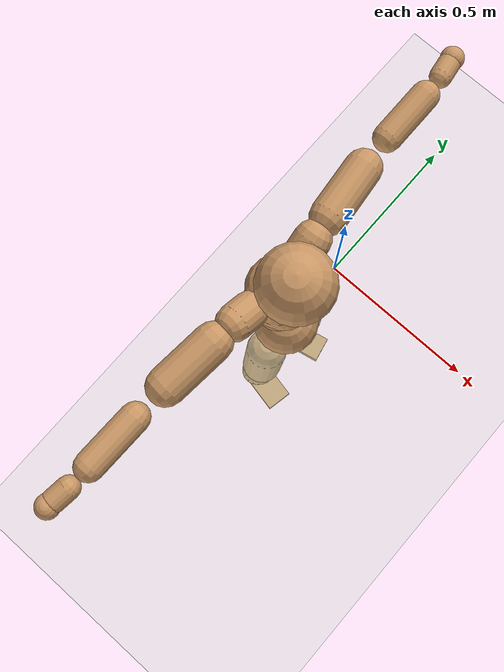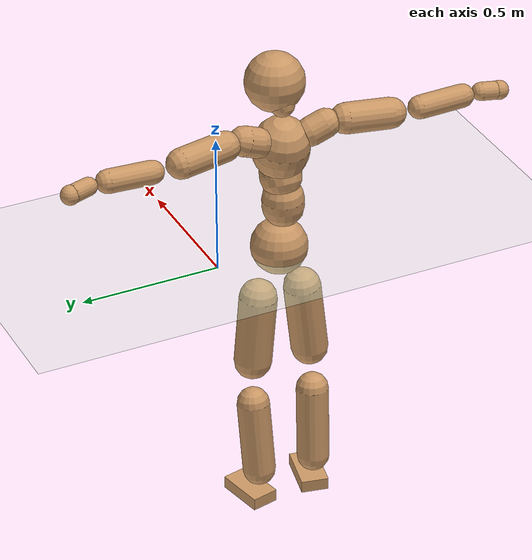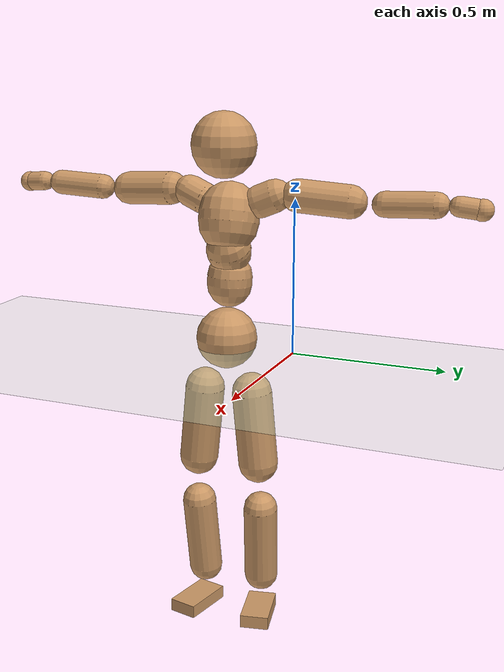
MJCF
<mujoco model="humanoid">
  <compiler coordinate="local" angle="radian"/>
  <default>
    <joint damping="0.0" armature="0.01" stiffness="0.0" limited="true"/>
    <geom conaffinity="1" condim="3" contype="7" margin="0.001" rgba="0.8 0.6 .4 1"/>
  </default>
  <asset>
    <texture type="skybox" builtin="gradient" rgb1=".4 .5 .6" rgb2="0 0 0" width="100" height="100"/>
    <texture builtin="flat" height="1278" mark="cross" markrgb="1 1 1" name="texgeom" random="0.01" rgb1="0.8 0.6 0.4" rgb2="0.8 0.6 0.4" type="cube" width="127"/>
    <texture builtin="checker" height="100" name="texplane" rgb1="0 0 0" rgb2="0.8 0.8 0.8" type="2d" width="100"/>
    <material name="MatPlane" reflectance="0.5" shininess="1" specular="1" texrepeat="60 60" texture="texplane"/>
    <material name="geom" texture="texgeom" texuniform="true"/>
  </asset>
  <worldbody>
    <light cutoff="100" diffuse="1 1 1" dir="-0 0 -1.3" directional="true" exponent="1" pos="0 0 1.3" specular=".1 .1 .1"/>
    <geom conaffinity="1" condim="3" name="floor" pos="0 0 0" rgba="0.8 0.9 0.8 1" size="100 100 .2" type="plane" material="MatPlane"/>
    <body name="Pelvis" pos="-0.0005 -0.2331 0.0277">
      <freejoint name="Pelvis"/>
      <geom type="sphere" contype="1" conaffinity="1" density="500" size="0.1013" pos="0.0000 0.0000 0.0000" name="Pelvis"/>
      <body name="L_Hip" pos="-0.0102 0.0785 -0.0993">
        <joint name="L_Hip_x" type="hinge" pos="0 0 0" axis="1 0 0" stiffness="800" damping="80" armature="0.02" range="-180.0000 180.0000"/>
        <joint name="L_Hip_y" type="hinge" pos="0 0 0" axis="0 1 0" stiffness="800" damping="80" armature="0.02" range="-180.0000 180.0000"/>
        <joint name="L_Hip_z" type="hinge" pos="0 0 0" axis="0 0 1" stiffness="800" damping="80" armature="0.02" range="-180.0000 180.0000"/>
        <geom type="capsule" contype="1" conaffinity="1" density="500" fromto="-0.0008 0.0078 -0.0844 -0.0034 0.0311 -0.3375" size="0.0674" name="L_Hip"/>
        <body name="L_Knee" pos="-0.0042 0.0389 -0.4219">
          <joint name="L_Knee_x" type="hinge" pos="0 0 0" axis="1 0 0" stiffness="800" damping="80" armature="0.02" range="-180.0000 180.0000"/>
          <joint name="L_Knee_y" type="hinge" pos="0 0 0" axis="0 1 0" stiffness="800" damping="80" armature="0.02" range="-180.0000 180.0000"/>
          <joint name="L_Knee_z" type="hinge" pos="0 0 0" axis="0 0 1" stiffness="800" damping="80" armature="0.02" range="-180.0000 180.0000"/>
          <geom type="capsule" contype="1" conaffinity="1" density="500" fromto="-0.0102 -0.0025 -0.0894 -0.0406 -0.0102 -0.3575" size="0.0586" name="L_Knee"/>
          <body name="L_Ankle" pos="-0.0508 -0.0127 -0.4469">
            <joint name="L_Ankle_x" type="hinge" pos="0 0 0" axis="1 0 0" stiffness="800" damping="80" armature="0.02" range="-180.0000 180.0000"/>
            <joint name="L_Ankle_y" type="hinge" pos="0 0 0" axis="0 1 0" stiffness="800" damping="80" armature="0.02" range="-180.0000 180.0000"/>
            <joint name="L_Ankle_z" type="hinge" pos="0 0 0" axis="0 0 1" stiffness="800" damping="80" armature="0.02" range="-180.0000 180.0000"/>
            <geom type="box" contype="1" conaffinity="1" density="500" pos="0.0632 0.0135 -0.0315" size="0.0889 0.0492 0.0227" quat="0.9945 0.0000 0.0000 0.1047" name="L_Ankle"/>
            <body name="L_Toe" pos="0.1265 0.0269 -0.063">
              <joint name="L_Toe_x" type="hinge" pos="0 0 0" axis="1 0 0" stiffness="500" damping="50" armature="0.02" range="-180.0000 180.0000"/>
              <joint name="L_Toe_y" type="hinge" pos="0 0 0" axis="0 1 0" stiffness="500" damping="50" armature="0.02" range="-180.0000 180.0000"/>
              <joint name="L_Toe_z" type="hinge" pos="0 0 0" axis="0 0 1" stiffness="500" damping="50" armature="0.02" range="-180.0000 180.0000"/>
              <geom type="box" contype="1" conaffinity="1" density="500" pos="0.0000 0.0000 0.0320" size="0.001 0.0025 0.0012" quat="0.9939 0.0000 0.0000 0.1105" name="L_Toe"/>
            </body>
          </body>
        </body>
      </body>
      <body name="R_Hip" pos="-0.0061 -0.075 -0.0981">
        <joint name="R_Hip_x" type="hinge" pos="0 0 0" axis="1 0 0" stiffness="800" damping="80" armature="0.02" range="-180.0000 180.0000"/>
        <joint name="R_Hip_y" type="hinge" pos="0 0 0" axis="0 1 0" stiffness="800" damping="80" armature="0.02" range="-180.0000 180.0000"/>
        <joint name="R_Hip_z" type="hinge" pos="0 0 0" axis="0 0 1" stiffness="800" damping="80" armature="0.02" range="-180.0000 180.0000"/>
        <geom type="capsule" contype="1" conaffinity="1" density="500" fromto="-0.0015 -0.0093 -0.0860 -0.0062 -0.0371 -0.3442" size="0.0664" name="R_Hip"/>
        <body name="R_Knee" pos="-0.0077 -0.0464 -0.4302">
          <joint name="R_Knee_x" type="hinge" pos="0 0 0" axis="1 0 0" stiffness="800" damping="80" armature="0.02" range="-180.0000 180.0000"/>
          <joint name="R_Knee_y" type="hinge" pos="0 0 0" axis="0 1 0" stiffness="800" damping="80" armature="0.02" range="-180.0000 180.0000"/>
          <joint name="R_Knee_z" type="hinge" pos="0 0 0" axis="0 0 1" stiffness="800" damping="80" armature="0.02" range="-180.0000 180.0000"/>
          <geom type="capsule" contype="1" conaffinity="1" density="500" fromto="-0.0097 0.0032 -0.0894 -0.0389 0.0128 -0.3576" size="0.0588" name="R_Knee"/>
          <body name="R_Ankle" pos="-0.0486 0.016 -0.4469">
            <joint name="R_Ankle_x" type="hinge" pos="0 0 0" axis="1 0 0" stiffness="800" damping="80" armature="0.02" range="-180.0000 180.0000"/>
            <joint name="R_Ankle_y" type="hinge" pos="0 0 0" axis="0 1 0" stiffness="800" damping="80" armature="0.02" range="-180.0000 180.0000"/>
            <joint name="R_Ankle_z" type="hinge" pos="0 0 0" axis="0 0 1" stiffness="800" damping="80" armature="0.02" range="-180.0000 180.0000"/>
            <geom type="box" contype="1" conaffinity="1" density="500" pos="0.0653 -0.0135 -0.0269" size="0.0906 0.0495 0.0224" quat="0.9948 0.0000 0.0000 -0.1017" name="R_Ankle"/>
            <body name="R_Toe" pos="0.1305 -0.027 -0.0538">
              <joint name="R_Toe_x" type="hinge" pos="0 0 0" axis="1 0 0" stiffness="500" damping="50" armature="0.02" range="-180.0000 180.0000"/>
              <joint name="R_Toe_y" type="hinge" pos="0 0 0" axis="0 1 0" stiffness="500" damping="50" armature="0.02" range="-180.0000 180.0000"/>
              <joint name="R_Toe_z" type="hinge" pos="0 0 0" axis="0 0 1" stiffness="500" damping="50" armature="0.02" range="-180.0000 180.0000"/>
              <geom type="box" contype="1" conaffinity="1" density="500" pos="0.0000 0.0000 0.0302" size="0.0009 0.0024 0.0013" quat="0.9957 0.0000 0.0000 -0.0929" name="R_Toe"/>
            </body>
          </body>
        </body>
      </body>
      <body name="Torso" pos="-0.0256 -0.0038 0.1152">
        <joint name="Torso_x" type="hinge" pos="0 0 0" axis="1 0 0" stiffness="1000" damping="100" armature="0.02" range="-180.0000 180.0000"/>
        <joint name="Torso_y" type="hinge" pos="0 0 0" axis="0 1 0" stiffness="1000" damping="100" armature="0.02" range="-180.0000 180.0000"/>
        <joint name="Torso_z" type="hinge" pos="0 0 0" axis="0 0 1" stiffness="1000" damping="100" armature="0.02" range="-180.0000 180.0000"/>
        <geom type="capsule" contype="1" conaffinity="1" density="500" fromto="-0.0030 0.0031 0.0887 -0.0020 0.0021 0.0591" size="0.0742" name="Torso"/>
        <body name="Spine" pos="-0.005 0.0052 0.1478">
          <joint name="Spine_x" type="hinge" pos="0 0 0" axis="1 0 0" stiffness="1000" damping="100" armature="0.02" range="-180.0000 180.0000"/>
          <joint name="Spine_y" type="hinge" pos="0 0 0" axis="0 1 0" stiffness="1000" damping="100" armature="0.02" range="-180.0000 180.0000"/>
          <joint name="Spine_z" type="hinge" pos="0 0 0" axis="0 0 1" stiffness="1000" damping="100" armature="0.02" range="-180.0000 180.0000"/>
          <geom type="capsule" contype="1" conaffinity="1" density="500" fromto="0.0188 0.0005 0.0334 0.0126 0.0003 0.0222" size="0.0735" name="Spine"/>
          <body name="Chest" pos="0.0314 0.0008 0.0556">
            <joint name="Chest_x" type="hinge" pos="0 0 0" axis="1 0 0" stiffness="1000" damping="100" armature="0.02" range="-180.0000 180.0000"/>
            <joint name="Chest_y" type="hinge" pos="0 0 0" axis="0 1 0" stiffness="1000" damping="100" armature="0.02" range="-180.0000 180.0000"/>
            <joint name="Chest_z" type="hinge" pos="0 0 0" axis="0 0 1" stiffness="1000" damping="100" armature="0.02" range="-180.0000 180.0000"/>
            <geom type="capsule" contype="1" conaffinity="1" density="500" fromto="-0.0235 -0.0011 0.0957 -0.0156 -0.0007 0.0638" size="0.099" name="Chest"/>
            <body name="Neck" pos="-0.0385 -0.0037 0.2317">
              <joint name="Neck_x" type="hinge" pos="0 0 0" axis="1 0 0" stiffness="500" damping="50" armature="0.02" range="-180.0000 180.0000"/>
              <joint name="Neck_y" type="hinge" pos="0 0 0" axis="0 1 0" stiffness="500" damping="50" armature="0.02" range="-180.0000 180.0000"/>
              <joint name="Neck_z" type="hinge" pos="0 0 0" axis="0 0 1" stiffness="500" damping="50" armature="0.02" range="-180.0000 180.0000"/>
              <geom type="capsule" contype="1" conaffinity="1" density="500" fromto="0.0126 0.0010 0.0160 0.0502 0.0038 0.0641" size="0.0433" name="Neck"/>
              <body name="Head" pos="0.0628 0.0048 0.0801">
                <joint name="Head_x" type="hinge" pos="0 0 0" axis="1 0 0" stiffness="500" damping="50" armature="0.02" range="-180.0000 180.0000"/>
                <joint name="Head_y" type="hinge" pos="0 0 0" axis="0 1 0" stiffness="500" damping="50" armature="0.02" range="-180.0000 180.0000"/>
                <joint name="Head_z" type="hinge" pos="0 0 0" axis="0 0 1" stiffness="500" damping="50" armature="0.02" range="-180.0000 180.0000"/>
                <geom type="sphere" contype="1" conaffinity="1" density="500" size="0.1048" pos="0.0000 0.0000 0.0000" name="Head"/>
              </body>
            </body>
            <body name="L_Thorax" pos="-0.0362 0.0784 0.1245">
              <joint name="L_Thorax_x" type="hinge" pos="0 0 0" axis="1 0 0" stiffness="500" damping="50" armature="0.02" range="-180.0000 180.0000"/>
              <joint name="L_Thorax_y" type="hinge" pos="0 0 0" axis="0 1 0" stiffness="500" damping="50" armature="0.02" range="-180.0000 180.0000"/>
              <joint name="L_Thorax_z" type="hinge" pos="0 0 0" axis="0 0 1" stiffness="500" damping="50" armature="0.02" range="-180.0000 180.0000"/>
              <geom type="capsule" contype="1" conaffinity="1" density="500" fromto="-0.0016 0.0174 0.0072 -0.0063 0.0696 0.0290" size="0.0531" name="L_Thorax"/>
              <body name="L_Shoulder" pos="-0.0079 0.087 0.0362">
                <joint name="L_Shoulder_x" type="hinge" pos="0 0 0" axis="1 0 0" stiffness="500" damping="50" armature="0.02" range="-720.0000 720.0000"/>
                <joint name="L_Shoulder_y" type="hinge" pos="0 0 0" axis="0 1 0" stiffness="500" damping="50" armature="0.02" range="-720.0000 720.0000"/>
                <joint name="L_Shoulder_z" type="hinge" pos="0 0 0" axis="0 0 1" stiffness="500" damping="50" armature="0.02" range="-720.0000 720.0000"/>
                <geom type="capsule" contype="1" conaffinity="1" density="500" fromto="-0.0065 0.0558 -0.0041 -0.0261 0.2231 -0.0162" size="0.0533" name="L_Shoulder"/>
                <body name="L_Elbow" pos="-0.0327 0.2788 -0.0203">
                  <joint name="L_Elbow_x" type="hinge" pos="0 0 0" axis="1 0 0" stiffness="500" damping="50" armature="0.02" range="-720.0000 720.0000"/>
                  <joint name="L_Elbow_y" type="hinge" pos="0 0 0" axis="0 1 0" stiffness="500" damping="50" armature="0.02" range="-720.0000 720.0000"/>
                  <joint name="L_Elbow_z" type="hinge" pos="0 0 0" axis="0 0 1" stiffness="500" damping="50" armature="0.02" range="-720.0000 720.0000"/>
                  <geom type="capsule" contype="1" conaffinity="1" density="500" fromto="0.0001 0.0529 0.0023 0.0005 0.2115 0.0093" size="0.0413" name="L_Elbow"/>
                  <body name="L_Wrist" pos="0.0007 0.2644 0.0116">
                    <joint name="L_Wrist_x" type="hinge" pos="0 0 0" axis="1 0 0" stiffness="300" damping="30" armature="0.02" range="-180.0000 180.0000"/>
                    <joint name="L_Wrist_y" type="hinge" pos="0 0 0" axis="0 1 0" stiffness="300" damping="30" armature="0.02" range="-180.0000 180.0000"/>
                    <joint name="L_Wrist_z" type="hinge" pos="0 0 0" axis="0 0 1" stiffness="300" damping="30" armature="0.02" range="-180.0000 180.0000"/>
                    <geom type="capsule" contype="1" conaffinity="1" density="500" fromto="-0.0028 0.0169 -0.0021 -0.0113 0.0678 -0.0085" size="0.0319" name="L_Wrist"/>
                    <body name="L_Hand" pos="-0.0141 0.0847 -0.0106">
                      <joint name="L_Hand_x" type="hinge" pos="0 0 0" axis="1 0 0" stiffness="300" damping="30" armature="0.02" range="-180.0000 180.0000"/>
                      <joint name="L_Hand_y" type="hinge" pos="0 0 0" axis="0 1 0" stiffness="300" damping="30" armature="0.02" range="-180.0000 180.0000"/>
                      <joint name="L_Hand_z" type="hinge" pos="0 0 0" axis="0 0 1" stiffness="300" damping="30" armature="0.02" range="-180.0000 180.0000"/>
                      <geom type="sphere" contype="1" conaffinity="1" density="500" size="0.0341" pos="0.0000 0.0000 0.0000" name="L_Hand"/>
                    </body>
                  </body>
                </body>
              </body>
            </body>
            <body name="R_Thorax" pos="-0.0427 -0.08 0.1222">
              <joint name="R_Thorax_x" type="hinge" pos="0 0 0" axis="1 0 0" stiffness="500" damping="50" armature="0.02" range="-180.0000 180.0000"/>
              <joint name="R_Thorax_y" type="hinge" pos="0 0 0" axis="0 1 0" stiffness="500" damping="50" armature="0.02" range="-180.0000 180.0000"/>
              <joint name="R_Thorax_z" type="hinge" pos="0 0 0" axis="0 0 1" stiffness="500" damping="50" armature="0.02" range="-180.0000 180.0000"/>
              <geom type="capsule" contype="1" conaffinity="1" density="500" fromto="-0.0017 -0.0181 0.0074 -0.0068 -0.0723 0.0296" size="0.0515" name="R_Thorax"/>
              <body name="R_Shoulder" pos="-0.0085 -0.0904 0.037">
                <joint name="R_Shoulder_x" type="hinge" pos="0 0 0" axis="1 0 0" stiffness="500" damping="50" armature="0.02" range="-720.0000 720.0000"/>
                <joint name="R_Shoulder_y" type="hinge" pos="0 0 0" axis="0 1 0" stiffness="500" damping="50" armature="0.02" range="-720.0000 720.0000"/>
                <joint name="R_Shoulder_z" type="hinge" pos="0 0 0" axis="0 0 1" stiffness="500" damping="50" armature="0.02" range="-720.0000 720.0000"/>
                <geom type="capsule" contype="1" conaffinity="1" density="500" fromto="-0.0054 -0.0543 -0.0038 -0.0215 -0.2173 -0.0151" size="0.0545" name="R_Shoulder"/>
                <body name="R_Elbow" pos="-0.0268 -0.2716 -0.0189">
                  <joint name="R_Elbow_x" type="hinge" pos="0 0 0" axis="1 0 0" stiffness="500" damping="50" armature="0.02" range="-720.0000 720.0000"/>
                  <joint name="R_Elbow_y" type="hinge" pos="0 0 0" axis="0 1 0" stiffness="500" damping="50" armature="0.02" range="-720.0000 720.0000"/>
                  <joint name="R_Elbow_z" type="hinge" pos="0 0 0" axis="0 0 1" stiffness="500" damping="50" armature="0.02" range="-720.0000 720.0000"/>
                  <geom type="capsule" contype="1" conaffinity="1" density="500" fromto="-0.0007 -0.0542 0.0019 -0.0030 -0.2168 0.0078" size="0.0415" name="R_Elbow"/>
                  <body name="R_Wrist" pos="-0.0037 -0.271 0.0097">
                    <joint name="R_Wrist_x" type="hinge" pos="0 0 0" axis="1 0 0" stiffness="300" damping="30" armature="0.02" range="-180.0000 180.0000"/>
                    <joint name="R_Wrist_y" type="hinge" pos="0 0 0" axis="0 1 0" stiffness="300" damping="30" armature="0.02" range="-180.0000 180.0000"/>
                    <joint name="R_Wrist_z" type="hinge" pos="0 0 0" axis="0 0 1" stiffness="300" damping="30" armature="0.02" range="-180.0000 180.0000"/>
                    <geom type="capsule" contype="1" conaffinity="1" density="500" fromto="-0.0022 -0.0169 -0.0015 -0.0087 -0.0676 -0.0061" size="0.0323" name="R_Wrist"/>
                    <body name="R_Hand" pos="-0.0109 -0.0845 -0.0076">
                      <joint name="R_Hand_x" type="hinge" pos="0 0 0" axis="1 0 0" stiffness="300" damping="30" armature="0.02" range="-180.0000 180.0000"/>
                      <joint name="R_Hand_y" type="hinge" pos="0 0 0" axis="0 1 0" stiffness="300" damping="30" armature="0.02" range="-180.0000 180.0000"/>
                      <joint name="R_Hand_z" type="hinge" pos="0 0 0" axis="0 0 1" stiffness="300" damping="30" armature="0.02" range="-180.0000 180.0000"/>
                      <geom type="sphere" contype="1" conaffinity="1" density="500" size="0.0339" pos="0.0000 0.0000 0.0000" name="R_Hand"/>
                    </body>
                  </body>
                </body>
              </body>
            </body>
          </body>
        </body>
      </body>
    </body>
  </worldbody>
  <actuator>
    <motor name="L_Hip_x" joint="L_Hip_x" gear="500"/>
    <motor name="L_Hip_y" joint="L_Hip_y" gear="500"/>
    <motor name="L_Hip_z" joint="L_Hip_z" gear="500"/>
    <motor name="L_Knee_x" joint="L_Knee_x" gear="500"/>
    <motor name="L_Knee_y" joint="L_Knee_y" gear="500"/>
    <motor name="L_Knee_z" joint="L_Knee_z" gear="500"/>
    <motor name="L_Ankle_x" joint="L_Ankle_x" gear="500"/>
    <motor name="L_Ankle_y" joint="L_Ankle_y" gear="500"/>
    <motor name="L_Ankle_z" joint="L_Ankle_z" gear="500"/>
    <motor name="L_Toe_x" joint="L_Toe_x" gear="500"/>
    <motor name="L_Toe_y" joint="L_Toe_y" gear="500"/>
    <motor name="L_Toe_z" joint="L_Toe_z" gear="500"/>
    <motor name="R_Hip_x" joint="R_Hip_x" gear="500"/>
    <motor name="R_Hip_y" joint="R_Hip_y" gear="500"/>
    <motor name="R_Hip_z" joint="R_Hip_z" gear="500"/>
    <motor name="R_Knee_x" joint="R_Knee_x" gear="500"/>
    <motor name="R_Knee_y" joint="R_Knee_y" gear="500"/>
    <motor name="R_Knee_z" joint="R_Knee_z" gear="500"/>
    <motor name="R_Ankle_x" joint="R_Ankle_x" gear="500"/>
    <motor name="R_Ankle_y" joint="R_Ankle_y" gear="500"/>
    <motor name="R_Ankle_z" joint="R_Ankle_z" gear="500"/>
    <motor name="R_Toe_x" joint="R_Toe_x" gear="500"/>
    <motor name="R_Toe_y" joint="R_Toe_y" gear="500"/>
    <motor name="R_Toe_z" joint="R_Toe_z" gear="500"/>
    <motor name="Torso_x" joint="Torso_x" gear="500"/>
    <motor name="Torso_y" joint="Torso_y" gear="500"/>
    <motor name="Torso_z" joint="Torso_z" gear="500"/>
    <motor name="Spine_x" joint="Spine_x" gear="500"/>
    <motor name="Spine_y" joint="Spine_y" gear="500"/>
    <motor name="Spine_z" joint="Spine_z" gear="500"/>
    <motor name="Chest_x" joint="Chest_x" gear="500"/>
    <motor name="Chest_y" joint="Chest_y" gear="500"/>
    <motor name="Chest_z" joint="Chest_z" gear="500"/>
    <motor name="Neck_x" joint="Neck_x" gear="500"/>
    <motor name="Neck_y" joint="Neck_y" gear="500"/>
    <motor name="Neck_z" joint="Neck_z" gear="500"/>
    <motor name="Head_x" joint="Head_x" gear="500"/>
    <motor name="Head_y" joint="Head_y" gear="500"/>
    <motor name="Head_z" joint="Head_z" gear="500"/>
    <motor name="L_Thorax_x" joint="L_Thorax_x" gear="500"/>
    <motor name="L_Thorax_y" joint="L_Thorax_y" gear="500"/>
    <motor name="L_Thorax_z" joint="L_Thorax_z" gear="500"/>
    <motor name="L_Shoulder_x" joint="L_Shoulder_x" gear="500"/>
    <motor name="L_Shoulder_y" joint="L_Shoulder_y" gear="500"/>
    <motor name="L_Shoulder_z" joint="L_Shoulder_z" gear="500"/>
    <motor name="L_Elbow_x" joint="L_Elbow_x" gear="500"/>
    <motor name="L_Elbow_y" joint="L_Elbow_y" gear="500"/>
    <motor name="L_Elbow_z" joint="L_Elbow_z" gear="500"/>
    <motor name="L_Wrist_x" joint="L_Wrist_x" gear="500"/>
    <motor name="L_Wrist_y" joint="L_Wrist_y" gear="500"/>
    <motor name="L_Wrist_z" joint="L_Wrist_z" gear="500"/>
    <motor name="L_Hand_x" joint="L_Hand_x" gear="500"/>
    <motor name="L_Hand_y" joint="L_Hand_y" gear="500"/>
    <motor name="L_Hand_z" joint="L_Hand_z" gear="500"/>
    <motor name="R_Thorax_x" joint="R_Thorax_x" gear="500"/>
    <motor name="R_Thorax_y" joint="R_Thorax_y" gear="500"/>
    <motor name="R_Thorax_z" joint="R_Thorax_z" gear="500"/>
    <motor name="R_Shoulder_x" joint="R_Shoulder_x" gear="500"/>
    <motor name="R_Shoulder_y" joint="R_Shoulder_y" gear="500"/>
    <motor name="R_Shoulder_z" joint="R_Shoulder_z" gear="500"/>
    <motor name="R_Elbow_x" joint="R_Elbow_x" gear="500"/>
    <motor name="R_Elbow_y" joint="R_Elbow_y" gear="500"/>
    <motor name="R_Elbow_z" joint="R_Elbow_z" gear="500"/>
    <motor name="R_Wrist_x" joint="R_Wrist_x" gear="500"/>
    <motor name="R_Wrist_y" joint="R_Wrist_y" gear="500"/>
    <motor name="R_Wrist_z" joint="R_Wrist_z" gear="500"/>
    <motor name="R_Hand_x" joint="R_Hand_x" gear="500"/>
    <motor name="R_Hand_y" joint="R_Hand_y" gear="500"/>
    <motor name="R_Hand_z" joint="R_Hand_z" gear="500"/>
  </actuator>
  <contact>
    <exclude body1="Torso" body2="Chest"/>
    <exclude body1="Head" body2="Chest"/>
    <exclude body1="R_Knee" body2="R_Toe"/>
    <exclude body1="R_Knee" body2="L_Ankle"/>
    <exclude body1="R_Knee" body2="L_Toe"/>
    <exclude body1="L_Knee" body2="L_Toe"/>
    <exclude body1="L_Knee" body2="R_Ankle"/>
    <exclude body1="L_Knee" body2="R_Toe"/>
    <exclude body1="L_Shoulder" body2="Chest"/>
    <exclude body1="R_Shoulder" body2="Chest"/>
  </contact>
  <sensor/>
  <size njmax="700" nconmax="700"/>
</mujoco>
